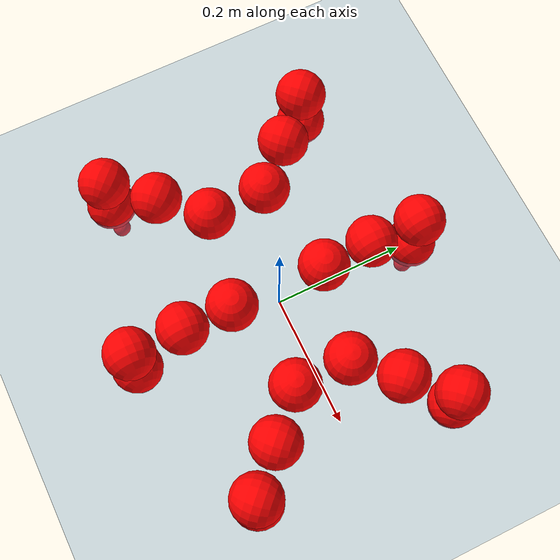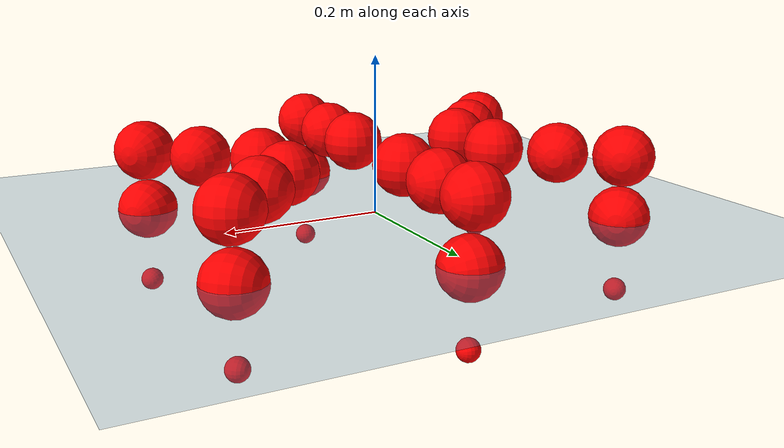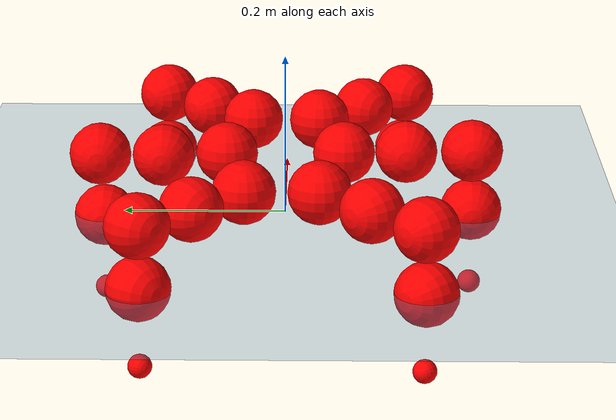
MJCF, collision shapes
<mujoco model="Golem">
  <compiler angle="radian" assetdir="assets" balanceinertia="true" inertiafromgeom="false"/>

  <option timestep="0.005" density="1.2" viscosity="2e-05"/>

  <size nkey="1"/>

  <visual>
    <quality shadowsize="8192"/>
    <map shadowclip="0.5"/>
  </visual>

  <default>
    <default class="/">
      <joint armature="0.01" damping="0.01" frictionloss="0.01"/>
      <geom contype="0" conaffinity="0" group="1" solref="-1000 -80"/>
      <site size="0.01 0.005 0.005" group="5"/>
      <general forcelimited="true" biastype="affine" gainprm="25" biasprm="0 -25 -0.5"/>
      <default class="visual">
        <geom type="mesh" group="2"/>
      </default>
      <default class="collision">
        <geom group="3"/>
      </default>
      <default class="foot">
        <geom size="0.01 0 0" condim="6" group="4" priority="1" solimp="0.015 1 0.01"/>
      </default>
      <default class="reward_collision_sphere">
        <geom group="5" rgba="1 0 0 1"/>
      </default>
    </default>
  </default>

  <asset>
    <texture type="skybox" colorspace="auto" name="//unnamed_texture_0" builtin="gradient" rgb1="0.95 0.95 0.95" rgb2="0.95 0.95 0.95" width="100" height="600"/>
    <texture type="2d" colorspace="auto" name="texplane" builtin="checker" rgb1="0.345 0.575 0.748" rgb2="0.345 0.575 0.748" markrgb="1 1 1" width="512" height="512"/>
    <material name="MatPlane" class="/" texture="texplane" texuniform="true" texrepeat="2 2" specular="0.9"/>
    <mesh name="body" class="/" file="body.stl" scale="0.001 0.001 0.001"/>
    <mesh name="coxa" class="/" file="coxa.stl" scale="0.001 0.001 0.001"/>
    <mesh name="femur" class="/" file="femur.stl" scale="0.001 0.001 0.001"/>
    <mesh name="tibia" class="/" file="tibia.stl" scale="0.001 0.001 0.001"/>
    <mesh name="tarsus" class="/" file="tarsus.stl" scale="0.001 0.001 0.001"/>
  </asset>

  <worldbody>
    <geom name="floor" class="/" size="100 100 0.125" type="plane" group="0" material="MatPlane"/>
    <light name="toplight_shadow" class="/" pos="0 0 5" dir="0.0990148 0.0990148 -0.990148" type="directional" ambient="0.04 0.04 0.04" diffuse="0.55 0.55 0.55" specular="0.12 0.12 0.12"/>
    <light name="toplight_fill" class="/" pos="0 0 5" dir="0.0990148 0.0990148 -0.990148" type="directional" castshadow="false" ambient="0.04 0.04 0.04" diffuse="0.3 0.3 0.3" specular="0.08 0.08 0.08"/>
    <body name="trunk" pos="-0.00248487 0.000127476 -0.00103844" quat="1 5.19344e-05 0.000292999 0.000338733">
      <inertial pos="0.000155545 -3.00545e-05 -0.00105377" quat="0.999899 -0.00409698 0.0128468 -0.00440561" mass="3.13782" diaginertia="0.00579113 0.00257691 0.0246903"/>
      <joint name="//unnamed_joint_0" type="free"/>
      <geom name="//unnamed_geom_1" class="/" pos="0 0 0.0767869" quat="1 0 0 0" type="mesh" rgba="0.9 0.9 0.9 1" mesh="body"/>
      <site name="imu" class="/" pos="0.118772 0.00964441 0.105968" size="0.00952827"/>
      <camera name="track" class="/" pos="0 -1.52332 0" quat="0.707107 0.707107 0 0" mode="trackcom"/>
      <camera name="ego_camera" class="/" pos="0.116613 0 0.11998" quat="-0.5 -0.5 0.5 0.5"/>
      <body name="coxa_RR" pos="-0.161194 -0.0616736 0.078803" quat="0.383249 5.58679e-05 -0.000575399 -0.923645">
        <inertial pos="0.00276734 0.00271065 0.00294729" quat="1 -6.07932e-05 -1.99715e-05 -4.20205e-05" mass="0.176989" diaginertia="0.0058757 0.00267973 0.0246847"/>
        <joint name="coxa_joint_RR" class="/" pos="0 0 0" axis="0.00164877 0.00109156 -0.999998" range="-3.13272 3.13696" armature="0.00967304" damping="0.0142008" frictionloss="0.00928144"/>
        <geom name="//unnamed_geom_2" class="/" type="mesh" rgba="0.2 0.2 0.2 1" mesh="coxa"/>
        <geom name="//unnamed_geom_3" class="reward_collision_sphere" size="0.0381131" pos="-0.0269108 0 0"/>
        <body name="femur_RR" pos="0.0560419 0.00186727 -0.00132018" quat="0.499883 -0.4988 0.500963 0.500352">
          <inertial pos="0.00133767 0.00245973 0.000490706" quat="0.999973 0.000894057 0.00719746 -0.00126353" mass="0.168912" diaginertia="0.00574623 0.00252627 0.0244654"/>
          <joint name="femur_joint_RR" class="/" pos="0 0 0" axis="0.000246437 -0.000391249 -1" stiffness="0.00876707" range="-3.08267 3.0834" armature="0.00955127" damping="0.0243838" frictionloss="0.0107617"/>
          <geom name="//unnamed_geom_4" class="/" type="mesh" rgba="0.9 0.9 0.9 1" mesh="femur"/>
          <geom name="//unnamed_geom_5" class="reward_collision_sphere" size="0.0381131"/>
          <body name="tibia_RR" pos="0.00149771 -0.0814972 0.00337388" quat="0.00128638 0.999999 0.000652716 -0.000369772">
            <inertial pos="-0.00246395 -0.000581368 -0.00108064" quat="0.999913 -0.00740448 -0.00679605 0.00849165" mass="0.172518" diaginertia="0.00597215 0.00258447 0.0254915"/>
            <joint name="tibia_joint_RR" class="/" pos="0 0 0" axis="-0.00488803 -0.00940454 0.999944" stiffness="0.00795029" range="-3.18936 3.15253" armature="0.00934821" damping="0.00392804" frictionloss="0.00923767"/>
            <geom name="//unnamed_geom_6" class="/" type="mesh" rgba="0.2 0.2 0.2 1" mesh="tibia"/>
            <geom name="//unnamed_geom_7" class="reward_collision_sphere" size="0.0381131"/>
            <body name="tarsus_RR" pos="0.0777674 0.0022799 -0.00057949" quat="0.999999 0.0012377 0.000206227 0.000457116">
              <inertial pos="0.0528155 0.00122446 -0.00245868" quat="0.500242 0.50001 0.500112 0.499635" mass="0.175825" diaginertia="0.00585745 0.00263244 0.0248917"/>
              <joint name="tarsus_joint_RR" class="/" pos="0 0 0" axis="0.00820525 0.00991938 0.999917" range="-3.13544 3.13461" armature="0.00939202" damping="0.0383829" frictionloss="0.00848954"/>
              <geom name="//unnamed_geom_8" class="/" type="mesh" rgba="0.9 0.9 0.9 1" mesh="tarsus"/>
              <geom name="foot_1" class="foot" size="0.00928736" pos="0.100467 0 0" quat="0 -0.707107 0 0.707107"/>
              <geom name="//unnamed_geom_10" class="reward_collision_sphere" size="0.0381131"/>
              <geom name="//unnamed_geom_11" class="reward_collision_sphere" size="0.0142924" pos="0.0964302 0 0"/>
              <site name="foot_1" class="foot" pos="0.100467 0 0" quat="0 -0.707107 0 0.707107" size="0.00952827"/>
            </body>
          </body>
        </body>
      </body>
      <body name="coxa_RM" pos="-0.00142262 -0.0995128 0.0801114" quat="0.707472 0.000729003 -0.000412087 -0.706741">
        <inertial pos="-0.00140996 -0.000940438 -0.000709535" quat="0.999995 0.000802926 0.00302148 -0.000488687" mass="0.17679" diaginertia="0.00569392 0.00269326 0.024974"/>
        <joint name="coxa_joint_RM" class="/" pos="0 0 0" axis="-0.00392674 -0.00127929 -0.999991" range="-3.09461 3.12895" armature="0.0108066" damping="0.0100541" frictionloss="0.00976504"/>
        <geom name="//unnamed_geom_12" class="/" type="mesh" rgba="0.2 0.2 0.2 1" mesh="coxa"/>
        <geom name="//unnamed_geom_13" class="reward_collision_sphere" size="0.0381131" pos="-0.0269108 0 0"/>
        <body name="femur_RM" pos="0.0497743 0.000268904 0.00116617" quat="0.499878 -0.501213 0.499728 0.499179">
          <inertial pos="-0.00060565 -0.00300856 0.00237974" quat="0.999997 0.0022352 0.00121566 -0.00016471" mass="0.178842" diaginertia="0.00560609 0.00253003 0.024505"/>
          <joint name="femur_joint_RM" class="/" pos="0 0 0" axis="0.00107957 -0.00101165 -0.999999" stiffness="0.000509377" range="-3.14602 3.10765" armature="0.00891414" damping="0.019079" frictionloss="0.00946816"/>
          <geom name="//unnamed_geom_14" class="/" type="mesh" rgba="0.9 0.9 0.9 1" mesh="femur"/>
          <geom name="//unnamed_geom_15" class="reward_collision_sphere" size="0.0381131"/>
          <body name="tibia_RM" pos="-0.00118722 -0.0809825 0.00128573" quat="-5.79148e-05 1 -2.02699e-05 -6.38671e-07">
            <inertial pos="-0.00262295 -0.000258808 -0.00141286" quat="0.999931 -0.00458068 0.00231996 -0.0105281" mass="0.174361" diaginertia="0.00592699 0.00253999 0.0250142"/>
            <joint name="tibia_joint_RM" class="/" pos="0 0 0" axis="0.00477095 -0.00728404 0.999962" stiffness="0.00124314" range="-3.14091 3.14576" armature="0.00960844" damping="0" frictionloss="0.00882549"/>
            <geom name="//unnamed_geom_16" class="/" type="mesh" rgba="0.2 0.2 0.2 1" mesh="tibia"/>
            <geom name="//unnamed_geom_17" class="reward_collision_sphere" size="0.0381131"/>
            <body name="tarsus_RM" pos="0.0776293 0.000435398 -0.00203789" quat="1 -0.000645917 0.000105299 -0.000108047">
              <inertial pos="0.054425 -0.000584175 0.000167538" quat="0.494115 0.506974 0.494966 0.503822" mass="0.171888" diaginertia="0.00587318 0.00254631 0.026482"/>
              <joint name="tarsus_joint_RM" class="/" pos="0 0 0" axis="-0.000598383 -0.00977715 0.999952" range="-3.19165 3.14329" armature="0.00809428" damping="0.00834884" frictionloss="0.00942675"/>
              <geom name="//unnamed_geom_18" class="/" type="mesh" rgba="0.9 0.9 0.9 1" mesh="tarsus"/>
              <geom name="foot_2" class="foot" size="0.0101962" pos="0.100467 0 0" quat="0 -0.707107 0 0.707107"/>
              <geom name="//unnamed_geom_20" class="reward_collision_sphere" size="0.0381131"/>
              <geom name="//unnamed_geom_21" class="reward_collision_sphere" size="0.0142924" pos="0.0964302 0 0"/>
              <site name="foot_2" class="foot" pos="0.100467 0 0" quat="0 -0.707107 0 0.707107" size="0.00952827"/>
            </body>
          </body>
        </body>
      </body>
      <body name="coxa_RF" pos="0.158572 -0.0614106 0.0771395" quat="0.924073 0.000428025 0.000260075 -0.382216">
        <inertial pos="0.00128311 0.00106315 0.000118252" quat="0.99999 0.00363362 0.00196379 -0.00164745" mass="0.174498" diaginertia="0.00576515 0.00249066 0.0248545"/>
        <joint name="coxa_joint_RF" class="/" pos="0 0 0" axis="0.0170507 -0.00562383 -0.999839" stiffness="0.00952032" range="-3.08271 3.11809" armature="0.00826874" damping="0.0280231" frictionloss="0.00935107"/>
        <geom name="//unnamed_geom_22" class="/" type="mesh" rgba="0.2 0.2 0.2 1" mesh="coxa"/>
        <geom name="//unnamed_geom_23" class="reward_collision_sphere" size="0.0381131" pos="-0.0269108 0 0"/>
        <body name="femur_RF" pos="0.0559721 5.68781e-05 -0.00223464" quat="0.500113 -0.499947 0.499453 0.500486">
          <inertial pos="-0.000539846 -0.00297671 0.000597301" quat="0.999958 0.00701073 0.00106811 0.00579258" mass="0.177438" diaginertia="0.00573778 0.00254671 0.0243259"/>
          <joint name="femur_joint_RF" class="/" pos="0 0 0" axis="-0.00020733 0.00143344 -0.999999" range="-3.1261 3.08088" armature="0.00967" damping="0.00510886" frictionloss="0.0106467"/>
          <geom name="//unnamed_geom_24" class="/" type="mesh" rgba="0.9 0.9 0.9 1" mesh="femur"/>
          <geom name="//unnamed_geom_25" class="reward_collision_sphere" size="0.0381131"/>
          <body name="tibia_RF" pos="-0.00215607 -0.0796365 0.000191684" quat="-0.00128022 0.999999 -0.00025165 -9.48413e-05">
            <inertial pos="0.00116865 0.000110465 0.000468255" quat="0.999938 -0.00486525 -0.00889445 0.0046007" mass="0.166797" diaginertia="0.0056554 0.00247568 0.0241785"/>
            <joint name="tibia_joint_RF" class="/" pos="0 0 0" axis="0.000143945 0.00023463 1" range="-3.13296 3.16039" armature="0.00940825" damping="0" frictionloss="0.0105975"/>
            <geom name="//unnamed_geom_26" class="/" type="mesh" rgba="0.2 0.2 0.2 1" mesh="tibia"/>
            <geom name="//unnamed_geom_27" class="reward_collision_sphere" size="0.0381131"/>
            <body name="tarsus_RF" pos="0.0773398 -0.000418458 -0.000290122" quat="1 -0.000175074 -4.27214e-05 2.27818e-05">
              <inertial pos="0.0531583 -0.000147858 -0.00067711" quat="0.503716 0.5084 0.49021 0.497488" mass="0.167422" diaginertia="0.00561903 0.00250578 0.0235245"/>
              <joint name="tarsus_joint_RF" class="/" pos="0 0 0" axis="0.00799459 -0.0069016 0.999944" stiffness="0.00134716" range="-3.13375 3.15991" armature="0.00934512" damping="0.00702996" frictionloss="0.0108576"/>
              <geom name="//unnamed_geom_28" class="/" type="mesh" rgba="0.9 0.9 0.9 1" mesh="tarsus"/>
              <geom name="foot_3" class="foot" size="0.0100626" pos="0.100467 0 0" quat="0 -0.707107 0 0.707107"/>
              <geom name="//unnamed_geom_30" class="reward_collision_sphere" size="0.0381131"/>
              <geom name="//unnamed_geom_31" class="reward_collision_sphere" size="0.0142924" pos="0.0964302 0 0"/>
              <site name="foot_3" class="foot" pos="0.100467 0 0" quat="0 -0.707107 0 0.707107" size="0.00952827"/>
            </body>
          </body>
        </body>
      </body>
      <body name="coxa_LR" pos="-0.162791 0.0655004 0.0792844" quat="0.382383 0.000620314 5.91857e-05 0.924004">
        <inertial pos="-7.59316e-05 0.000722246 0.0026064" quat="0.999994 0.000981041 0.00228248 -0.00248799" mass="0.165389" diaginertia="0.00562109 0.00253214 0.0245185"/>
        <joint name="coxa_joint_LR" class="/" pos="0 0 0" axis="-0.00896589 -0.00183376 -0.999958" range="-3.09929 3.13574" armature="0.00822555" damping="0.0207133" frictionloss="0.00933929"/>
        <geom name="//unnamed_geom_32" class="/" type="mesh" rgba="0.2 0.2 0.2 1" mesh="coxa"/>
        <geom name="//unnamed_geom_33" class="reward_collision_sphere" size="0.0381131" pos="-0.0269108 0 0"/>
        <body name="femur_LR" pos="0.0550881 -0.00135096 -0.000441276" quat="0.500931 -0.500308 0.499079 0.499679">
          <inertial pos="-0.000186519 0.000252358 0.00265128" quat="0.999916 0.00463839 -0.00183121 0.0119476" mass="0.177756" diaginertia="0.00600181 0.00246804 0.025685"/>
          <joint name="femur_joint_LR" class="/" pos="0 0 0" axis="-0.00298798 -0.00209155 0.999993" range="-3.16831 3.16902" armature="0.0094064" damping="0.00291329" frictionloss="0.00862638"/>
          <geom name="//unnamed_geom_34" class="/" type="mesh" rgba="0.9 0.9 0.9 1" mesh="femur"/>
          <geom name="//unnamed_geom_35" class="reward_collision_sphere" size="0.0381131"/>
          <body name="tibia_LR" pos="-0.000899595 -0.0812254 -0.000481811" quat="-0.000419578 1 -0.000112662 -0.000677897">
            <inertial pos="-0.000251606 -0.00192329 -0.00105503" quat="1 0.000123205 5.81793e-05 7.63796e-06" mass="0.173248" diaginertia="0.00578212 0.00262058 0.0240374"/>
            <joint name="tibia_joint_LR" class="/" pos="0 0 0" axis="-0.000309918 -0.000149396 -1" range="-3.11715 3.18391" armature="0.00811752" damping="0.0113807" frictionloss="0.00839983"/>
            <geom name="//unnamed_geom_36" class="/" type="mesh" rgba="0.2 0.2 0.2 1" mesh="tibia"/>
            <geom name="//unnamed_geom_37" class="reward_collision_sphere" size="0.0381131"/>
            <body name="tarsus_LR" pos="0.0770564 -0.00143005 0.00188657" quat="1 -1.71145e-05 -7.99738e-06 -1.92925e-05">
              <inertial pos="0.0549984 0.000885038 0.00183374" quat="0.498787 0.503837 0.500578 0.496771" mass="0.170137" diaginertia="0.0057058 0.00269835 0.0252994"/>
              <joint name="tarsus_joint_LR" class="/" pos="0 0 0" axis="-0.00254232 0.00468479 -0.999986" stiffness="0.0134762" range="-3.14402 3.09529" armature="0.00921376" damping="0.0293996" frictionloss="0.0106334"/>
              <geom name="//unnamed_geom_38" class="/" type="mesh" rgba="0.9 0.9 0.9 1" mesh="tarsus"/>
              <geom name="foot_4" class="foot" size="0.0103087" pos="0.100467 0 0" quat="0.707107 0 -0.707107 0"/>
              <geom name="//unnamed_geom_40" class="reward_collision_sphere" size="0.0381131"/>
              <geom name="//unnamed_geom_41" class="reward_collision_sphere" size="0.0142924" pos="0.0964302 0 0"/>
              <site name="foot_4" class="foot" pos="0.100467 0 0" quat="0.707107 0 -0.707107 0" size="0.00952827"/>
            </body>
          </body>
        </body>
      </body>
      <body name="coxa_LM" pos="0.00126016 0.0986098 0.078128" quat="0.706666 0.0008394 -0.000977025 0.707546">
        <inertial pos="0.00135055 0.000458759 0.00236296" quat="1 0.000636546 0.000339663 -0.000188961" mass="0.17251" diaginertia="0.00591688 0.00254798 0.0246564"/>
        <joint name="coxa_joint_LM" class="/" pos="0 0 0" axis="-0.00175537 0.00692919 -0.999974" range="-3.08394 3.08167" armature="0.0104473" damping="0.0135392" frictionloss="0.0108692"/>
        <geom name="//unnamed_geom_42" class="/" type="mesh" rgba="0.2 0.2 0.2 1" mesh="coxa"/>
        <geom name="//unnamed_geom_43" class="reward_collision_sphere" size="0.0381131" pos="-0.0269108 0 0"/>
        <body name="femur_LM" pos="0.0513985 0.00282288 -0.00238813" quat="0.499879 -0.500314 0.499789 0.500019">
          <inertial pos="-0.00260409 0.00264354 -0.000599481" quat="0.999936 0.00252833 -0.00774467 0.00789245" mass="0.17672" diaginertia="0.00609012 0.00252643 0.0257695"/>
          <joint name="femur_joint_LM" class="/" pos="0 0 0" axis="-0.0107237 0.00295686 0.999938" stiffness="0.0113761" range="-3.08843 3.1439" armature="0.0092636" damping="0" frictionloss="0.00907296"/>
          <geom name="//unnamed_geom_44" class="/" type="mesh" rgba="0.9 0.9 0.9 1" mesh="femur"/>
          <geom name="//unnamed_geom_45" class="reward_collision_sphere" size="0.0381131"/>
          <body name="tibia_LM" pos="-0.000625125 -0.0781631 -0.00221394" quat="-6.41245e-05 1 -0.000210077 0.000209505">
            <inertial pos="0.00224279 0.00158349 0.00291319" quat="0.999936 0.0110677 -0.00218114 0.000600109" mass="0.172518" diaginertia="0.00564728 0.00252734 0.0241166"/>
            <joint name="tibia_joint_LM" class="/" pos="0 0 0" axis="0.0146729 -0.00213524 -0.99989" range="-3.18579 3.18753" armature="0.00935899" damping="0" frictionloss="0.00820041"/>
            <geom name="//unnamed_geom_46" class="/" type="mesh" rgba="0.2 0.2 0.2 1" mesh="tibia"/>
            <geom name="//unnamed_geom_47" class="reward_collision_sphere" size="0.0381131"/>
            <body name="tarsus_LM" pos="0.0811091 -0.00378434 0.00192922" quat="1 -0.000277264 0.00019402 -0.000151252">
              <inertial pos="0.0525216 0.000347457 0.000260183" quat="0.494314 0.511667 0.499525 0.494292" mass="0.177241" diaginertia="0.00612675 0.00259396 0.0248039"/>
              <joint name="tarsus_joint_LM" class="/" pos="0 0 0" axis="-0.0098147 -0.00912949 -0.99991" stiffness="0.00597986" range="-3.13467 3.08632" armature="0.0100079" damping="0.0110034" frictionloss="0.00947606"/>
              <geom name="//unnamed_geom_48" class="/" type="mesh" rgba="0.9 0.9 0.9 1" mesh="tarsus"/>
              <geom name="foot_5" class="foot" size="0.0105061" pos="0.100467 0 0" quat="0.707107 0 -0.707107 0"/>
              <geom name="//unnamed_geom_50" class="reward_collision_sphere" size="0.0381131"/>
              <geom name="//unnamed_geom_51" class="reward_collision_sphere" size="0.0142924" pos="0.0964302 0 0"/>
              <site name="foot_5" class="foot" pos="0.100467 0 0" quat="0.707107 0 -0.707107 0" size="0.00952827"/>
            </body>
          </body>
        </body>
      </body>
      <body name="coxa_LF" pos="0.158501 0.0617652 0.0771546" quat="0.923903 -0.000137124 -3.55486e-05 0.382627">
        <inertial pos="0.000798242 0.0014978 0.000130367" quat="1 -4.64718e-05 -0.000317815 0.000117026" mass="0.169477" diaginertia="0.00563502 0.00256592 0.024826"/>
        <joint name="coxa_joint_LF" class="/" pos="0 0 0" axis="-0.000127493 0.0025093 -0.999997" range="-3.15729 3.0836" armature="0.0104348" damping="0.011669" frictionloss="0.00966987"/>
        <geom name="//unnamed_geom_52" class="/" type="mesh" rgba="0.2 0.2 0.2 1" mesh="coxa"/>
        <geom name="//unnamed_geom_53" class="reward_collision_sphere" size="0.0381131" pos="-0.0269108 0 0"/>
        <body name="femur_LF" pos="0.0506183 0.000440156 -0.000228854" quat="0.499489 -0.499617 0.499947 0.500946">
          <inertial pos="-0.00184068 0.00253989 -0.00181025" quat="0.99999 -0.00309033 0.00322436 0.000316073" mass="0.171517" diaginertia="0.00564391 0.00239668 0.0239159"/>
          <joint name="femur_joint_LF" class="/" pos="0 0 0" axis="-0.0101021 0.00338311 0.999943" stiffness="0.0103695" range="-3.14122 3.11135" armature="0.00850856" damping="0" frictionloss="0.00999525"/>
          <geom name="//unnamed_geom_54" class="/" type="mesh" rgba="0.9 0.9 0.9 1" mesh="femur"/>
          <geom name="//unnamed_geom_55" class="reward_collision_sphere" size="0.0381131"/>
          <body name="tibia_LF" pos="-0.000777588 -0.0817543 0.00395759" quat="-0.000353839 1 0.00015045 0.000650892">
            <inertial pos="0.00212623 0.00299627 0.000155762" quat="0.999979 0.00555662 -0.00319873 -0.00113723" mass="0.172142" diaginertia="0.00578436 0.00262216 0.0257489"/>
            <joint name="tibia_joint_LF" class="/" pos="0 0 0" axis="0.00353154 0.00202509 -0.999992" range="-3.15457 3.08217" armature="0.00954387" damping="0.00213321" frictionloss="0.00946081"/>
            <geom name="//unnamed_geom_56" class="/" type="mesh" rgba="0.2 0.2 0.2 1" mesh="tibia"/>
            <geom name="//unnamed_geom_57" class="reward_collision_sphere" size="0.0381131"/>
            <body name="tarsus_LF" pos="0.0789736 0.00193708 -0.00133401" quat="1 -5.18057e-05 3.11244e-06 6.51519e-05">
              <inertial pos="0.0560803 -0.00140579 -0.00106355" quat="0.504119 0.496945 0.499412 0.499497" mass="0.165946" diaginertia="0.00551742 0.00249207 0.0240349"/>
              <joint name="tarsus_joint_LF" class="/" pos="0 0 0" axis="-0.00400683 0.00668262 -0.99997" range="-3.10417 3.12921" armature="0.00936619" damping="0.0102397" frictionloss="0.00987829"/>
              <geom name="//unnamed_geom_58" class="/" type="mesh" rgba="0.9 0.9 0.9 1" mesh="tarsus"/>
              <geom name="foot_6" class="foot" size="0.00870456" pos="0.100467 0 0" quat="0.707107 0 -0.707107 0"/>
              <geom name="//unnamed_geom_60" class="reward_collision_sphere" size="0.0381131"/>
              <geom name="//unnamed_geom_61" class="reward_collision_sphere" size="0.0142924" pos="0.0964302 0 0"/>
              <site name="foot_6" class="foot" pos="0.100467 0 0" quat="0.707107 0 -0.707107 0" size="0.00952827"/>
            </body>
          </body>
        </body>
      </body>
    </body>
  </worldbody>

  <contact>
    <pair class="/" geom1="floor" geom2="foot_1" name="//unnamed_contact_0"/>
    <pair class="/" geom1="floor" geom2="foot_2" name="//unnamed_contact_1"/>
    <pair class="/" geom1="floor" geom2="foot_3" name="//unnamed_contact_2"/>
    <pair class="/" geom1="floor" geom2="foot_4" name="//unnamed_contact_3"/>
    <pair class="/" geom1="floor" geom2="foot_5" name="//unnamed_contact_4"/>
    <pair class="/" geom1="floor" geom2="foot_6" name="//unnamed_contact_5"/>
  </contact>

  <actuator>
    <general name="coxa_joint_RR" class="/" joint="coxa_joint_RR" forcerange="-6.76033 6.76033" gainprm="24.1578" biasprm="0 -24.1578 -0.454995"/>
    <general name="femur_joint_RR" class="/" joint="femur_joint_RR" forcerange="-6.90591 6.90591" gainprm="24.1578" biasprm="0 -24.1578 -0.454995"/>
    <general name="tibia_joint_RR" class="/" joint="tibia_joint_RR" forcerange="-6.69324 6.69324" gainprm="24.1578" biasprm="0 -24.1578 -0.454995"/>
    <general name="tarsus_joint_RR" class="/" joint="tarsus_joint_RR" forcerange="-6.53779 6.53779" gainprm="24.1578" biasprm="0 -24.1578 -0.454995"/>
    <general name="coxa_joint_RM" class="/" joint="coxa_joint_RM" forcerange="-6.45516 6.45516" gainprm="24.1578" biasprm="0 -24.1578 -0.454995"/>
    <general name="femur_joint_RM" class="/" joint="femur_joint_RM" forcerange="-6.36809 6.36809" gainprm="24.1578" biasprm="0 -24.1578 -0.454995"/>
    <general name="tibia_joint_RM" class="/" joint="tibia_joint_RM" forcerange="-6.91478 6.91478" gainprm="24.1578" biasprm="0 -24.1578 -0.454995"/>
    <general name="tarsus_joint_RM" class="/" joint="tarsus_joint_RM" forcerange="-7.55498 7.55498" gainprm="24.1578" biasprm="0 -24.1578 -0.454995"/>
    <general name="coxa_joint_RF" class="/" joint="coxa_joint_RF" forcerange="-6.42906 6.42906" gainprm="24.1578" biasprm="0 -24.1578 -0.454995"/>
    <general name="femur_joint_RF" class="/" joint="femur_joint_RF" forcerange="-6.32347 6.32347" gainprm="24.1578" biasprm="0 -24.1578 -0.454995"/>
    <general name="tibia_joint_RF" class="/" joint="tibia_joint_RF" forcerange="-7.62327 7.62327" gainprm="24.1578" biasprm="0 -24.1578 -0.454995"/>
    <general name="tarsus_joint_RF" class="/" joint="tarsus_joint_RF" forcerange="-7.65369 7.65369" gainprm="24.1578" biasprm="0 -24.1578 -0.454995"/>
    <general name="coxa_joint_LR" class="/" joint="coxa_joint_LR" forcerange="-7.10055 7.10055" gainprm="24.1578" biasprm="0 -24.1578 -0.454995"/>
    <general name="femur_joint_LR" class="/" joint="femur_joint_LR" forcerange="-6.21857 6.21857" gainprm="24.1578" biasprm="0 -24.1578 -0.454995"/>
    <general name="tibia_joint_LR" class="/" joint="tibia_joint_LR" forcerange="-6.6909 6.6909" gainprm="24.1578" biasprm="0 -24.1578 -0.454995"/>
    <general name="tarsus_joint_LR" class="/" joint="tarsus_joint_LR" forcerange="-7.10141 7.10141" gainprm="24.1578" biasprm="0 -24.1578 -0.454995"/>
    <general name="coxa_joint_LM" class="/" joint="coxa_joint_LM" forcerange="-7.69208 7.69208" gainprm="24.1578" biasprm="0 -24.1578 -0.454995"/>
    <general name="femur_joint_LM" class="/" joint="femur_joint_LM" forcerange="-7.02892 7.02892" gainprm="24.1578" biasprm="0 -24.1578 -0.454995"/>
    <general name="tibia_joint_LM" class="/" joint="tibia_joint_LM" forcerange="-6.91231 6.91231" gainprm="24.1578" biasprm="0 -24.1578 -0.454995"/>
    <general name="tarsus_joint_LM" class="/" joint="tarsus_joint_LM" forcerange="-6.28792 6.28792" gainprm="24.1578" biasprm="0 -24.1578 -0.454995"/>
    <general name="coxa_joint_LF" class="/" joint="coxa_joint_LF" forcerange="-6.84836 6.84836" gainprm="24.1578" biasprm="0 -24.1578 -0.454995"/>
    <general name="femur_joint_LF" class="/" joint="femur_joint_LF" forcerange="-6.94988 6.94988" gainprm="24.1578" biasprm="0 -24.1578 -0.454995"/>
    <general name="tibia_joint_LF" class="/" joint="tibia_joint_LF" forcerange="-7.54864 7.54864" gainprm="24.1578" biasprm="0 -24.1578 -0.454995"/>
    <general name="tarsus_joint_LF" class="/" joint="tarsus_joint_LF" forcerange="-7.15512 7.15512" gainprm="24.1578" biasprm="0 -24.1578 -0.454995"/>
  </actuator>

  <sensor>
    <gyro site="imu" name="imu_angular_velocity"/>
    <velocimeter site="imu" name="imu_linear_velocity"/>
    <framelinvel objtype="site" objname="foot_1" name="foot_1_global_linear_velocity"/>
    <framelinvel objtype="site" objname="foot_2" name="foot_2_global_linear_velocity"/>
    <framelinvel objtype="site" objname="foot_3" name="foot_3_global_linear_velocity"/>
    <framelinvel objtype="site" objname="foot_4" name="foot_4_global_linear_velocity"/>
    <framelinvel objtype="site" objname="foot_5" name="foot_5_global_linear_velocity"/>
    <framelinvel objtype="site" objname="foot_6" name="foot_6_global_linear_velocity"/>
  </sensor>

  <keyframe>
    <key name="home" qpos="0 0 0.1457 1 0 0 0 0 0 0 0 0 0 0 0 0 0 0 0 0 0 0 0 0 0 0 0 0 0 0 0"/>
  </keyframe>
</mujoco>
